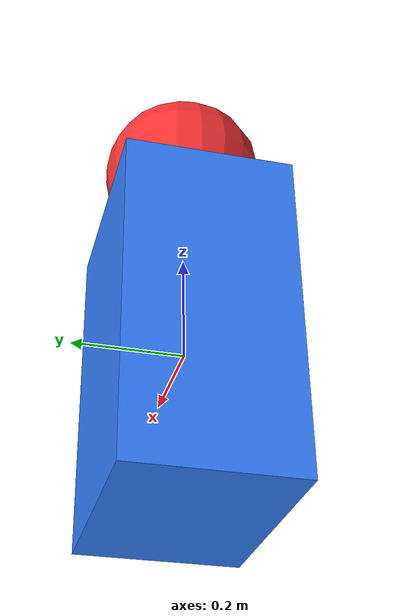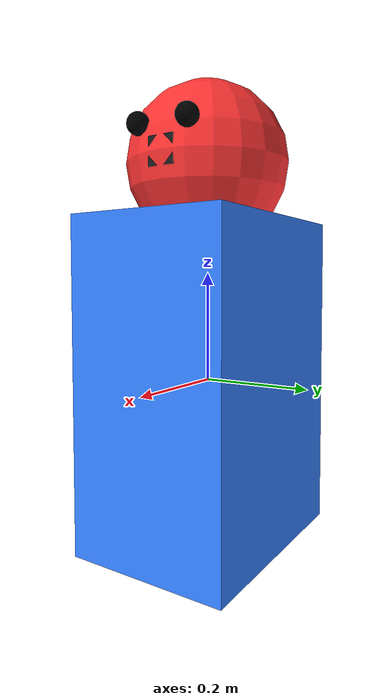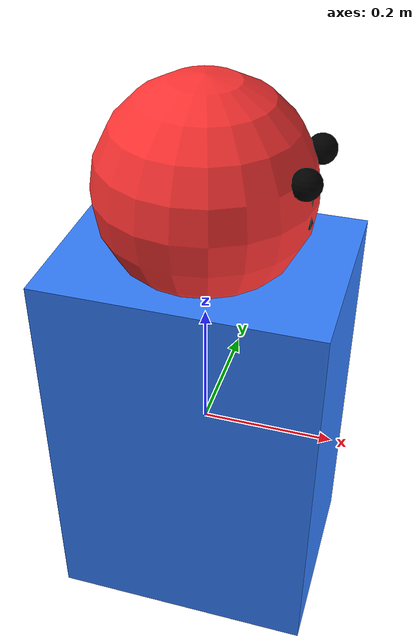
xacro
<?xml version="1.0"?>
<robot xmlns:xacro="http://www.ros.org/wiki/xacro" name="humanoid">

    <!-- Color Properties -->
    <xacro:property name="torso_color" value="0.2 0.5 1.0 1.0"/>
    <xacro:property name="head_color" value="1.0 0.2 0.2 1.0"/>
    <xacro:property name="eye_color" value="0 0 0 1.0"/>
    <xacro:property name="camera_color" value="0.1 0.1 0.1 1.0"/>

    <!-- Main Body Links and Joints -->
    <link name="torso_link">
        <visual>
            <geometry><box size="0.4 0.3 0.6"/></geometry>
            <material name="blue"><color rgba="${torso_color}"/></material>
        </visual>
        <collision><geometry><box size="0.4 0.3 0.6"/></geometry></collision>
        <inertial>
            <mass value="10"/>
            <inertia ixx="1.0" ixy="0.0" ixz="0.0" iyy="1.0" iyz="0.0" izz="1.0"/>
        </inertial>
    </link>
    <!-- Gazebo color tag for the torso -->
    <gazebo reference="torso_link">
        <material>Gazebo/Blue</material>
    </gazebo>

    <link name="head_link">
        <visual>
            <geometry><sphere radius="0.15"/></geometry>
            <material name="red"><color rgba="${head_color}"/></material>
        </visual>
        <collision><geometry><sphere radius="0.15"/></geometry></collision>
        <inertial>
            <mass value="2"/>
            <inertia ixx="0.1" ixy="0.0" ixz="0.0" iyy="0.1" iyz="0.0" izz="0.1"/>
        </inertial>
    </link>
    <!-- Gazebo color tag for the head -->
    <gazebo reference="head_link">
        <material>Gazebo/Red</material>
    </gazebo>

    <joint name="neck_joint" type="revolute">
        <parent link="torso_link"/>
        <child link="head_link"/>
        <origin xyz="0 0 0.4" rpy="0 0 0"/>
        <axis xyz="0 0 1"/>
        <limit lower="-1.57" upper="1.57" effort="10" velocity="1.0"/>
    </joint>

    <link name="left_eye_link">
        <visual><geometry><sphere radius="0.02"/></geometry><material name="black"><color rgba="${eye_color}"/></material></visual>
    </link>
    <!-- Gazebo color tag for the left eye -->
    <gazebo reference="left_eye_link">
        <material>Gazebo/Black</material>
    </gazebo>

    <link name="right_eye_link">
        <visual><geometry><sphere radius="0.02"/></geometry><material name="black"><color rgba="${eye_color}"/></material></visual>
    </link>
    <!-- Gazebo color tag for the right eye -->
    <gazebo reference="right_eye_link">
        <material>Gazebo/Black</material>
    </gazebo>

    <joint name="left_eye_joint" type="fixed">
        <parent link="head_link"/><child link="left_eye_link"/><origin xyz="0.14 0.05 0.05" rpy="0 0 0"/>
    </joint>
    <joint name="right_eye_joint" type="fixed">
        <parent link="head_link"/><child link="right_eye_link"/><origin xyz="0.14 -0.05 0.05" rpy="0 0 0"/>
    </joint>

    <link name="camera_link">
      <visual>
        <geometry><box size="0.05 0.05 0.05"/></geometry>
        <material name="camera_mat"><color rgba="${camera_color}"/></material>
      </visual>
      <collision><geometry><box size="0.05 0.05 0.05"/></geometry></collision>
      <inertial><mass value="0.01"/><inertia ixx="1e-6" ixy="0" ixz="0" iyy="1e-6" iyz="0" izz="1e-6" /></inertial>
    </link>
    <!-- Gazebo color tag for the camera -->
    <gazebo reference="camera_link">
        <material>Gazebo/DarkGrey</material>
    </gazebo>

    <joint name="camera_joint" type="fixed">
      <parent link="head_link"/>
      <child link="camera_link"/>
      <origin xyz="0.12 0 0" rpy="0 0 0"/>
    </joint>

    <!-- Sensor Plugins -->
    <gazebo reference="torso_link">
        <sensor name="imu_sensor" type="imu">
            <plugin name="gazebo_ros_imu_sensor" filename="libgazebo_ros_imu_sensor.so">
                <ros>
                    <namespace>/humanoid</namespace>
                    <remapping>~/out:=imu_data</remapping>
                </ros>
            </plugin>
        </sensor>
    </gazebo>

    <gazebo reference="camera_link">
        <sensor name="camera_sensor" type="camera">
            <update_rate>30.0</update_rate>
            <camera name="head_camera">
                <horizontal_fov>1.396</horizontal_fov>
                <image><width>800</width><height>800</height><format>R8G8B8</format></image>
                <clip><near>0.02</near><far>300</far></clip>
            </camera>
            <plugin name="camera_controller" filename="libgazebo_ros_camera.so">
                <ros>
                    <namespace>/humanoid</namespace>
                    <remapping>~/image_raw:=image_raw</remapping>
                    <remapping>~/camera_info:=camera_info</remapping>
                </ros>
            </plugin>
        </sensor>
    </gazebo>

</robot>
